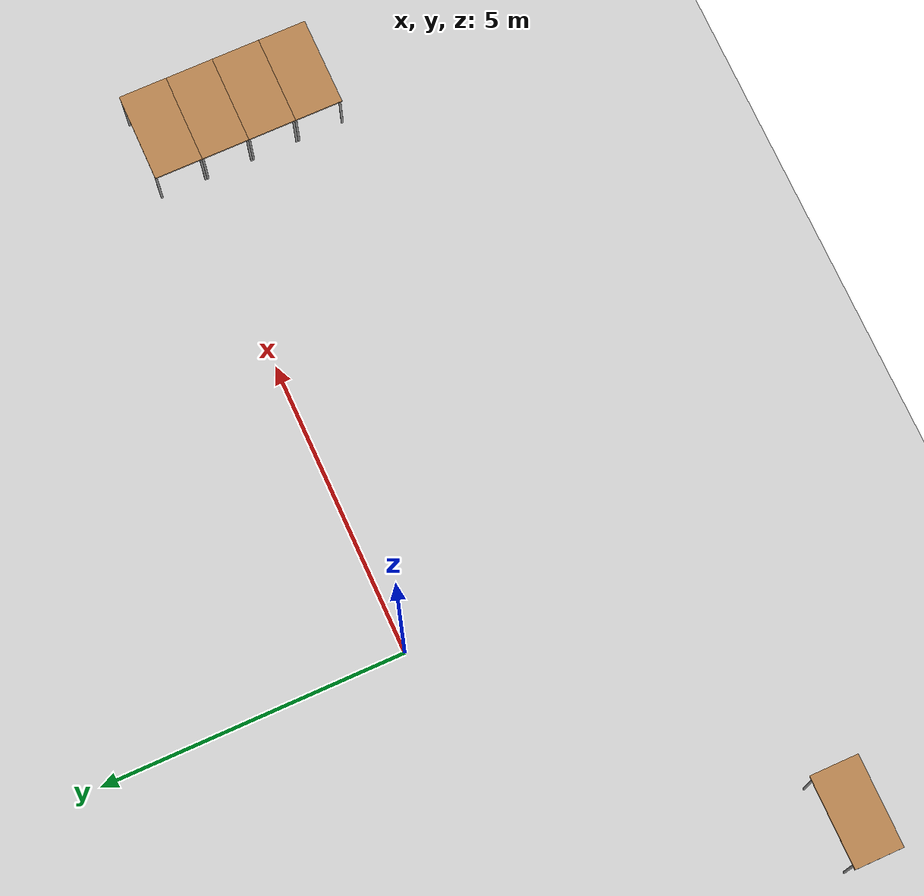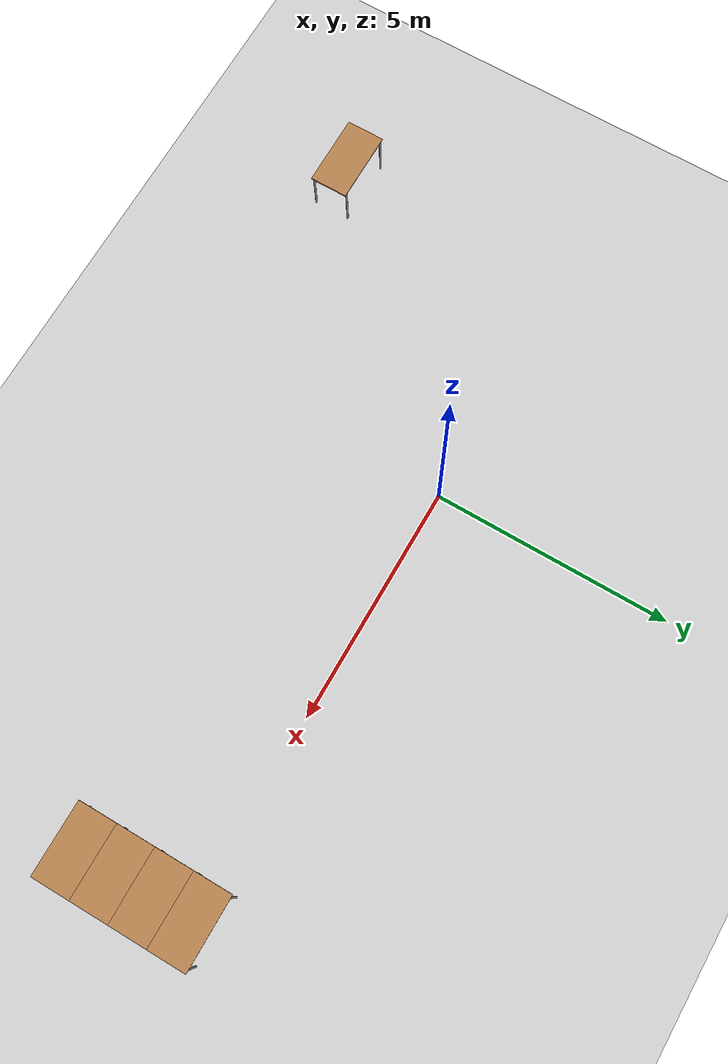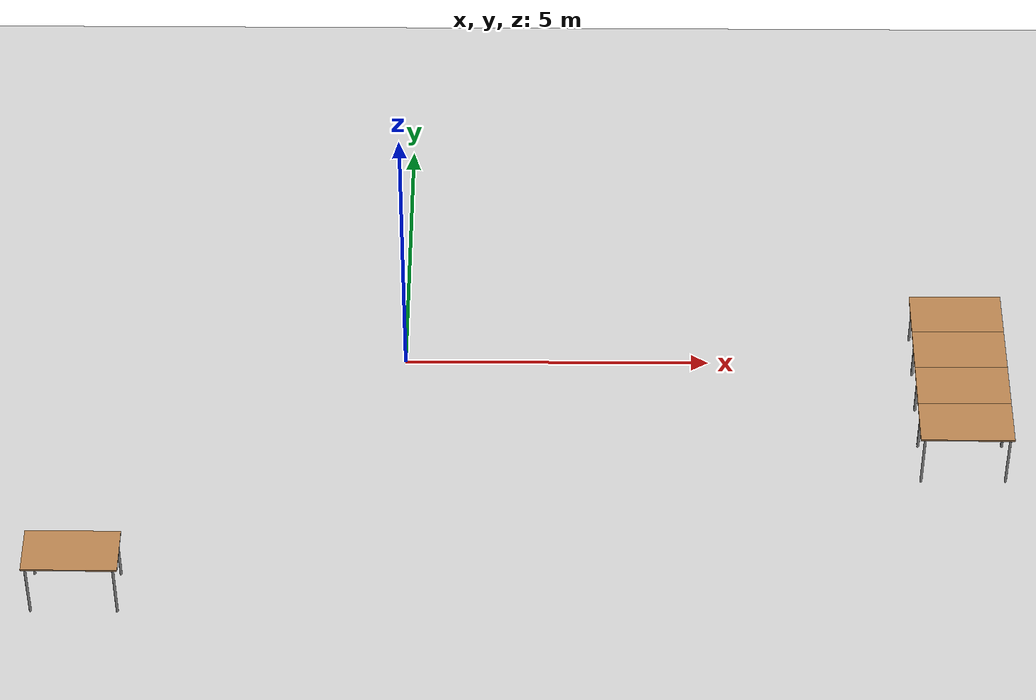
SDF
<sdf version="1.7">
 <world name="duckie_world">
  <light name="sun" type="directional">
   <pose>0 0 10 0 -0 0</pose>
   <diffuse>0.8 0.8 0.8 1</diffuse>
   <specular>0.2 0.2 0.2 1</specular>
   <attenuation>
    <range>1000</range>
    <constant>0.9</constant>
    <linear>0.01</linear>
    <quadratic>0.001</quadratic>
   </attenuation>
   <direction>-0.5 0.1 -0.9</direction>
   <spot><inner_angle>0</inner_angle><outer_angle>0</outer_angle><falloff>0</falloff></spot>
  </light>
  <model name="ground_plane">
   <static>1</static>
   <link name="link">
    <collision name="collision">
     <geometry><plane><normal>0 0 1</normal><size>100 100</size></plane></geometry>
     <surface>
      <contact><collide_bitmask>65535</collide_bitmask></contact>
      <friction><ode><mu>100</mu><mu2>50</mu2></ode></friction>
     </surface>
    </collision>
    <visual name="visual">
     <cast_shadows>0</cast_shadows>
     <geometry><plane><normal>0 0 1</normal><size>100 100</size></plane></geometry>
     <material>
      <script><uri>file://media/materials/scripts/gazebo.material</uri><name>Gazebo/Grey</name></script>
     </material>
    </visual>
   </link>
  </model>
  <gravity>0 0 -9.8</gravity>
  <magnetic_field>6e-06 2.3e-05 -4.2e-05</magnetic_field>
  <atmosphere type="adiabatic"/>
  <physics type="ode">
   <max_step_size>0.001</max_step_size>
   <real_time_factor>1</real_time_factor>
   <real_time_update_rate>1000</real_time_update_rate>
  </physics>
  <scene><ambient>0.4 0.4 0.4 1</ambient><background>0.7 0.7 0.7 1</background><shadows>1</shadows></scene>
  <spherical_coordinates>
   <surface_model>EARTH_WGS84</surface_model>
   <latitude_deg>0</latitude_deg>
   <longitude_deg>0</longitude_deg>
   <elevation>0</elevation>
   <heading_deg>0</heading_deg>
  </spherical_coordinates>
  <model name="table">
   <static>1</static>
   <link name="link">
    <collision name="surface">
     <pose>0 0 1 0 -0 0</pose>
     <geometry><box><size>1.5 0.8 0.03</size></box></geometry>
     <surface><friction><ode><mu>0.6</mu><mu2>0.6</mu2></ode></friction></surface>
    </collision>
    <visual name="visual1">
     <pose>0 0 1 0 -0 0</pose>
     <geometry><box><size>1.5 0.8 0.03</size></box></geometry>
     <material>
      <script><uri>file://media/materials/scripts/gazebo.material</uri><name>Gazebo/Wood</name></script>
     </material>
    </visual>
    <collision name="front_left_leg">
     <pose>0.68 0.38 0.5 0 -0 0</pose>
     <geometry><cylinder><radius>0.02</radius><length>1</length></cylinder></geometry>
    </collision>
    <visual name="front_left_leg">
     <pose>0.68 0.38 0.5 0 -0 0</pose>
     <geometry><cylinder><radius>0.02</radius><length>1</length></cylinder></geometry>
     <material>
      <script><uri>file://media/materials/scripts/gazebo.material</uri><name>Gazebo/Grey</name></script>
     </material>
    </visual>
    <collision name="front_right_leg">
     <pose>0.68 -0.38 0.5 0 -0 0</pose>
     <geometry><cylinder><radius>0.02</radius><length>1</length></cylinder></geometry>
    </collision>
    <visual name="front_right_leg">
     <pose>0.68 -0.38 0.5 0 -0 0</pose>
     <geometry><cylinder><radius>0.02</radius><length>1</length></cylinder></geometry>
     <material>
      <script><uri>file://media/materials/scripts/gazebo.material</uri><name>Gazebo/Grey</name></script>
     </material>
    </visual>
    <collision name="back_right_leg">
     <pose>-0.68 -0.38 0.5 0 -0 0</pose>
     <geometry><cylinder><radius>0.02</radius><length>1</length></cylinder></geometry>
    </collision>
    <visual name="back_right_leg">
     <pose>-0.68 -0.38 0.5 0 -0 0</pose>
     <geometry><cylinder><radius>0.02</radius><length>1</length></cylinder></geometry>
     <material>
      <script><uri>file://media/materials/scripts/gazebo.material</uri><name>Gazebo/Grey</name></script>
     </material>
    </visual>
    <collision name="back_left_leg">
     <pose>-0.68 0.38 0.5 0 -0 0</pose>
     <geometry><cylinder><radius>0.02</radius><length>1</length></cylinder></geometry>
    </collision>
    <visual name="back_left_leg">
     <pose>-0.68 0.38 0.5 0 -0 0</pose>
     <geometry><cylinder><radius>0.02</radius><length>1</length></cylinder></geometry>
     <material>
      <script><uri>file://media/materials/scripts/gazebo.material</uri><name>Gazebo/Grey</name></script>
     </material>
    </visual>
   </link>
   <pose>9.04794 -2.21743 0 0 -0 0</pose>
  </model>
  <model name="table_clone">
   <static>1</static>
   <link name="link">
    <collision name="surface">
     <pose>0 0 1 0 -0 0</pose>
     <geometry><box><size>1.5 0.8 0.03</size></box></geometry>
     <surface><friction><ode><mu>0.6</mu><mu2>0.6</mu2></ode></friction></surface>
    </collision>
    <visual name="visual1">
     <pose>0 0 1 0 -0 0</pose>
     <geometry><box><size>1.5 0.8 0.03</size></box></geometry>
     <material>
      <script><uri>file://media/materials/scripts/gazebo.material</uri><name>Gazebo/Wood</name></script>
     </material>
    </visual>
    <collision name="front_left_leg">
     <pose>0.68 0.38 0.5 0 -0 0</pose>
     <geometry><cylinder><radius>0.02</radius><length>1</length></cylinder></geometry>
    </collision>
    <visual name="front_left_leg">
     <pose>0.68 0.38 0.5 0 -0 0</pose>
     <geometry><cylinder><radius>0.02</radius><length>1</length></cylinder></geometry>
     <material>
      <script><uri>file://media/materials/scripts/gazebo.material</uri><name>Gazebo/Grey</name></script>
     </material>
    </visual>
    <collision name="front_right_leg">
     <pose>0.68 -0.38 0.5 0 -0 0</pose>
     <geometry><cylinder><radius>0.02</radius><length>1</length></cylinder></geometry>
    </collision>
    <visual name="front_right_leg">
     <pose>0.68 -0.38 0.5 0 -0 0</pose>
     <geometry><cylinder><radius>0.02</radius><length>1</length></cylinder></geometry>
     <material>
      <script><uri>file://media/materials/scripts/gazebo.material</uri><name>Gazebo/Grey</name></script>
     </material>
    </visual>
    <collision name="back_right_leg">
     <pose>-0.68 -0.38 0.5 0 -0 0</pose>
     <geometry><cylinder><radius>0.02</radius><length>1</length></cylinder></geometry>
    </collision>
    <visual name="back_right_leg">
     <pose>-0.68 -0.38 0.5 0 -0 0</pose>
     <geometry><cylinder><radius>0.02</radius><length>1</length></cylinder></geometry>
     <material>
      <script><uri>file://media/materials/scripts/gazebo.material</uri><name>Gazebo/Grey</name></script>
     </material>
    </visual>
    <collision name="back_left_leg">
     <pose>-0.68 0.38 0.5 0 -0 0</pose>
     <geometry><cylinder><radius>0.02</radius><length>1</length></cylinder></geometry>
    </collision>
    <visual name="back_left_leg">
     <pose>-0.68 0.38 0.5 0 -0 0</pose>
     <geometry><cylinder><radius>0.02</radius><length>1</length></cylinder></geometry>
     <material>
      <script><uri>file://media/materials/scripts/gazebo.material</uri><name>Gazebo/Grey</name></script>
     </material>
    </visual>
   </link>
   <pose>9.04846 -1.41944 0 0 -0 0</pose>
  </model>
  <model name="table_clone_0">
   <static>1</static>
   <link name="link">
    <collision name="surface">
     <pose>0 0 1 0 -0 0</pose>
     <geometry><box><size>1.5 0.8 0.03</size></box></geometry>
     <surface><friction><ode><mu>0.6</mu><mu2>0.6</mu2></ode></friction></surface>
    </collision>
    <visual name="visual1">
     <pose>0 0 1 0 -0 0</pose>
     <geometry><box><size>1.5 0.8 0.03</size></box></geometry>
     <material>
      <script><uri>file://media/materials/scripts/gazebo.material</uri><name>Gazebo/Wood</name></script>
     </material>
    </visual>
    <collision name="front_left_leg">
     <pose>0.68 0.38 0.5 0 -0 0</pose>
     <geometry><cylinder><radius>0.02</radius><length>1</length></cylinder></geometry>
    </collision>
    <visual name="front_left_leg">
     <pose>0.68 0.38 0.5 0 -0 0</pose>
     <geometry><cylinder><radius>0.02</radius><length>1</length></cylinder></geometry>
     <material>
      <script><uri>file://media/materials/scripts/gazebo.material</uri><name>Gazebo/Grey</name></script>
     </material>
    </visual>
    <collision name="front_right_leg">
     <pose>0.68 -0.38 0.5 0 -0 0</pose>
     <geometry><cylinder><radius>0.02</radius><length>1</length></cylinder></geometry>
    </collision>
    <visual name="front_right_leg">
     <pose>0.68 -0.38 0.5 0 -0 0</pose>
     <geometry><cylinder><radius>0.02</radius><length>1</length></cylinder></geometry>
     <material>
      <script><uri>file://media/materials/scripts/gazebo.material</uri><name>Gazebo/Grey</name></script>
     </material>
    </visual>
    <collision name="back_right_leg">
     <pose>-0.68 -0.38 0.5 0 -0 0</pose>
     <geometry><cylinder><radius>0.02</radius><length>1</length></cylinder></geometry>
    </collision>
    <visual name="back_right_leg">
     <pose>-0.68 -0.38 0.5 0 -0 0</pose>
     <geometry><cylinder><radius>0.02</radius><length>1</length></cylinder></geometry>
     <material>
      <script><uri>file://media/materials/scripts/gazebo.material</uri><name>Gazebo/Grey</name></script>
     </material>
    </visual>
    <collision name="back_left_leg">
     <pose>-0.68 0.38 0.5 0 -0 0</pose>
     <geometry><cylinder><radius>0.02</radius><length>1</length></cylinder></geometry>
    </collision>
    <visual name="back_left_leg">
     <pose>-0.68 0.38 0.5 0 -0 0</pose>
     <geometry><cylinder><radius>0.02</radius><length>1</length></cylinder></geometry>
     <material>
      <script><uri>file://media/materials/scripts/gazebo.material</uri><name>Gazebo/Grey</name></script>
     </material>
    </visual>
   </link>
   <pose>9.04892 -0.626357 0 0 -0 0</pose>
  </model>
  <model name="table_clone_1">
   <static>1</static>
   <link name="link">
    <collision name="surface">
     <pose>0 0 1 0 -0 0</pose>
     <geometry><box><size>1.5 0.8 0.03</size></box></geometry>
     <surface><friction><ode><mu>0.6</mu><mu2>0.6</mu2></ode></friction></surface>
    </collision>
    <visual name="visual1">
     <pose>0 0 1 0 -0 0</pose>
     <geometry><box><size>1.5 0.8 0.03</size></box></geometry>
     <material>
      <script><uri>file://media/materials/scripts/gazebo.material</uri><name>Gazebo/Wood</name></script>
     </material>
    </visual>
    <collision name="front_left_leg">
     <pose>0.68 0.38 0.5 0 -0 0</pose>
     <geometry><cylinder><radius>0.02</radius><length>1</length></cylinder></geometry>
    </collision>
    <visual name="front_left_leg">
     <pose>0.68 0.38 0.5 0 -0 0</pose>
     <geometry><cylinder><radius>0.02</radius><length>1</length></cylinder></geometry>
     <material>
      <script><uri>file://media/materials/scripts/gazebo.material</uri><name>Gazebo/Grey</name></script>
     </material>
    </visual>
    <collision name="front_right_leg">
     <pose>0.68 -0.38 0.5 0 -0 0</pose>
     <geometry><cylinder><radius>0.02</radius><length>1</length></cylinder></geometry>
    </collision>
    <visual name="front_right_leg">
     <pose>0.68 -0.38 0.5 0 -0 0</pose>
     <geometry><cylinder><radius>0.02</radius><length>1</length></cylinder></geometry>
     <material>
      <script><uri>file://media/materials/scripts/gazebo.material</uri><name>Gazebo/Grey</name></script>
     </material>
    </visual>
    <collision name="back_right_leg">
     <pose>-0.68 -0.38 0.5 0 -0 0</pose>
     <geometry><cylinder><radius>0.02</radius><length>1</length></cylinder></geometry>
    </collision>
    <visual name="back_right_leg">
     <pose>-0.68 -0.38 0.5 0 -0 0</pose>
     <geometry><cylinder><radius>0.02</radius><length>1</length></cylinder></geometry>
     <material>
      <script><uri>file://media/materials/scripts/gazebo.material</uri><name>Gazebo/Grey</name></script>
     </material>
    </visual>
    <collision name="back_left_leg">
     <pose>-0.68 0.38 0.5 0 -0 0</pose>
     <geometry><cylinder><radius>0.02</radius><length>1</length></cylinder></geometry>
    </collision>
    <visual name="back_left_leg">
     <pose>-0.68 0.38 0.5 0 -0 0</pose>
     <geometry><cylinder><radius>0.02</radius><length>1</length></cylinder></geometry>
     <material>
      <script><uri>file://media/materials/scripts/gazebo.material</uri><name>Gazebo/Grey</name></script>
     </material>
    </visual>
   </link>
   <pose>9.04961 0.170204 0 0 -0 0</pose>
  </model>
  <model name="table_0">
   <static>1</static>
   <link name="link">
    <collision name="surface">
     <pose>0 0 1 0 -0 0</pose>
     <geometry><box><size>1.5 0.8 0.03</size></box></geometry>
     <surface><friction><ode><mu>0.6</mu><mu2>0.6</mu2></ode></friction></surface>
    </collision>
    <visual name="visual1">
     <pose>0 0 1 0 -0 0</pose>
     <geometry><box><size>1.5 0.8 0.03</size></box></geometry>
     <material>
      <script><uri>file://media/materials/scripts/gazebo.material</uri><name>Gazebo/Wood</name></script>
     </material>
    </visual>
    <collision name="front_left_leg">
     <pose>0.68 0.38 0.5 0 -0 0</pose>
     <geometry><cylinder><radius>0.02</radius><length>1</length></cylinder></geometry>
    </collision>
    <visual name="front_left_leg">
     <pose>0.68 0.38 0.5 0 -0 0</pose>
     <geometry><cylinder><radius>0.02</radius><length>1</length></cylinder></geometry>
     <material>
      <script><uri>file://media/materials/scripts/gazebo.material</uri><name>Gazebo/Grey</name></script>
     </material>
    </visual>
    <collision name="front_right_leg">
     <pose>0.68 -0.38 0.5 0 -0 0</pose>
     <geometry><cylinder><radius>0.02</radius><length>1</length></cylinder></geometry>
    </collision>
    <visual name="front_right_leg">
     <pose>0.68 -0.38 0.5 0 -0 0</pose>
     <geometry><cylinder><radius>0.02</radius><length>1</length></cylinder></geometry>
     <material>
      <script><uri>file://media/materials/scripts/gazebo.material</uri><name>Gazebo/Grey</name></script>
     </material>
    </visual>
    <collision name="back_right_leg">
     <pose>-0.68 -0.38 0.5 0 -0 0</pose>
     <geometry><cylinder><radius>0.02</radius><length>1</length></cylinder></geometry>
    </collision>
    <visual name="back_right_leg">
     <pose>-0.68 -0.38 0.5 0 -0 0</pose>
     <geometry><cylinder><radius>0.02</radius><length>1</length></cylinder></geometry>
     <material>
      <script><uri>file://media/materials/scripts/gazebo.material</uri><name>Gazebo/Grey</name></script>
     </material>
    </visual>
    <collision name="back_left_leg">
     <pose>-0.68 0.38 0.5 0 -0 0</pose>
     <geometry><cylinder><radius>0.02</radius><length>1</length></cylinder></geometry>
    </collision>
    <visual name="back_left_leg">
     <pose>-0.68 0.38 0.5 0 -0 0</pose>
     <geometry><cylinder><radius>0.02</radius><length>1</length></cylinder></geometry>
     <material>
      <script><uri>file://media/materials/scripts/gazebo.material</uri><name>Gazebo/Grey</name></script>
     </material>
    </visual>
   </link>
   <pose>-5.04494 -5.01762 0 0 -0 0</pose>
  </model>
 </world>
</sdf>
